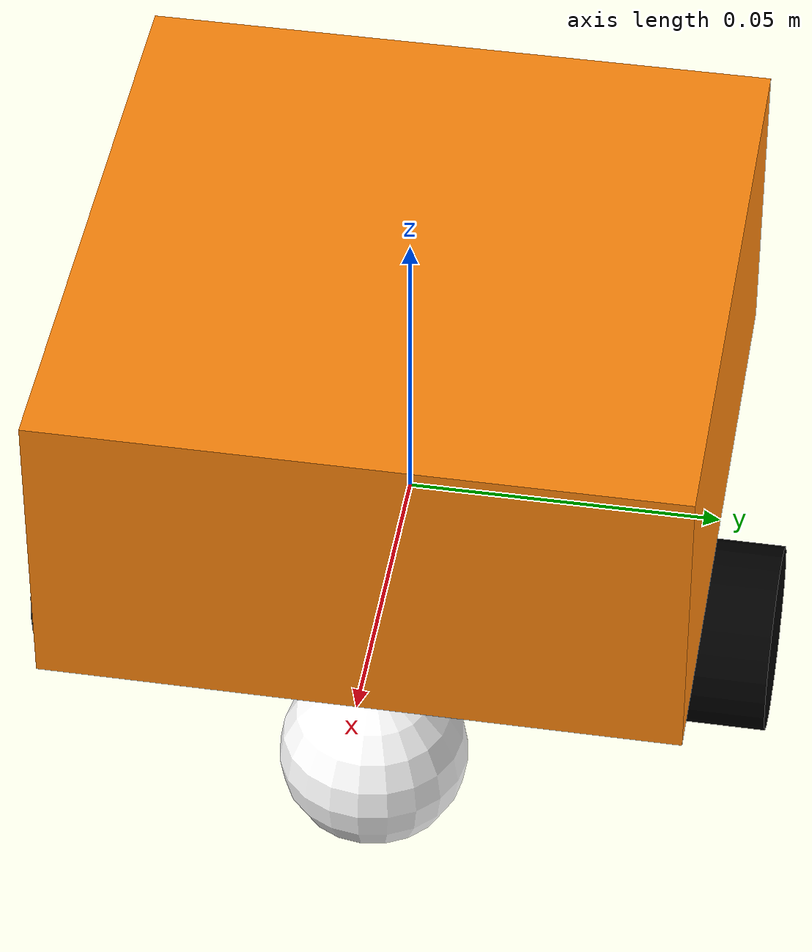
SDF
<?xml version="1.0" ?>
<sdf version='1.11'>
  <model name='diffdrive_robot'>
    <link name='base_link'>
      <inertial>
        <pose>0 0 -0.01 0 0 0</pose>
        <mass>0.5</mass>
        <inertia>
          <ixx>0.00040549999999999999</ixx>
          <ixy>0</ixy>
          <ixz>0</ixz>
          <iyy>0.00065050000000000014</iyy>
          <iyz>0</iyz>
          <izz>0.00076300000000000001</izz>
        </inertia>
      </inertial>
      <collision name='base_link_collision'>
        <pose>0 0 0 0 0 0</pose>
        <geometry>
          <box>
            <size>0.10000000000000001 0.10000000000000001 0.050000000000000003</size>
          </box>
        </geometry>
      </collision>
      <collision name='base_link_fixed_joint_lump__caster_frontal_wheel_collision_1'>
        <pose>0.035000000000000003 0 -0.025000000000000001 0 0 0</pose>
        <geometry>
          <sphere>
            <radius>0.014999999999999999</radius>
          </sphere>
        </geometry>
      </collision>
      <collision name='base_link_fixed_joint_lump__caster_rear_wheel_collision_2'>
        <pose>-0.035000000000000003 0 -0.025000000000000001 0 0 0</pose>
        <geometry>
          <sphere>
            <radius>0.014999999999999999</radius>
          </sphere>
        </geometry>
      </collision>
      <visual name='base_link_visual'>
        <pose>0 0 0.025000000000000001 0 0 0</pose>
        <geometry>
          <box>
            <size>0.10000000000000001 0.10000000000000001 0.050000000000000003</size>
          </box>
        </geometry>
        <material>
          <diffuse>1 0.529411793 0.0490196086 1</diffuse>
          <ambient>1 0.529411793 0.0490196086 1</ambient>
        </material>
      </visual>
      <visual name='base_link_fixed_joint_lump__caster_frontal_wheel_visual_1'>
        <pose>0.035000000000000003 0 -0.025000000000000001 0 0 0</pose>
        <geometry>
          <sphere>
            <radius>0.014999999999999999</radius>
          </sphere>
        </geometry>
        <material>
          <diffuse>1 1 1 1</diffuse>
          <ambient>1 1 1 1</ambient>
        </material>
      </visual>
      <visual name='base_link_fixed_joint_lump__caster_rear_wheel_visual_2'>
        <pose>-0.035000000000000003 0 -0.025000000000000001 0 0 0</pose>
        <geometry>
          <sphere>
            <radius>0.014999999999999999</radius>
          </sphere>
        </geometry>
        <material>
          <diffuse>1 1 1 1</diffuse>
          <ambient>1 1 1 1</ambient>
        </material>
      </visual>
    </link>
    <joint name='left_wheel_joint' type='revolute'>
      <pose relative_to='base_link'>0 -0.050000000000000003 -0.025000000000000001 0 0 0</pose>
      <parent>base_link</parent>
      <child>left_wheel</child>
      <axis>
        <xyz>0 1 0</xyz>
        <limit>
          <effort>100</effort>
          <velocity>1</velocity>
          <lower>-inf</lower>
          <upper>inf</upper>
        </limit>
        <dynamics>
          <damping>0.20000000000000001</damping>
          <friction>0</friction>
          <spring_reference>0</spring_reference>
          <spring_stiffness>0</spring_stiffness>
        </dynamics>
      </axis>
    </joint>
    <link name='left_wheel'>
      <pose relative_to='left_wheel_joint'>0 0 0 0 0 0</pose>
      <inertial>
        <pose>0 0 0 1.5707963267948959 0 0</pose>
        <mass>0.29999999999999999</mass>
        <inertia>
          <ixx>2.6874999999999999e-05</ixx>
          <ixy>0</ixy>
          <ixz>0</ixz>
          <iyy>2.6874999999999999e-05</iyy>
          <iyz>0</iyz>
          <izz>3.3749999999999987e-05</izz>
        </inertia>
      </inertial>
      <collision name='left_wheel_collision'>
        <pose>0 0 0 1.5707963267948959 0 0</pose>
        <geometry>
          <cylinder>
            <length>0.02</length>
            <radius>0.014999999999999999</radius>
          </cylinder>
        </geometry>
      </collision>
      <visual name='left_wheel_visual'>
        <pose>0 0 0 1.5707963267948959 0 0</pose>
        <geometry>
          <cylinder>
            <length>0.02</length>
            <radius>0.014999999999999999</radius>
          </cylinder>
        </geometry>
        <material>
          <diffuse>0 0 0 1</diffuse>
          <ambient>0 0 0 1</ambient>
        </material>
      </visual>
    </link>
    <joint name='right_wheel_joint' type='revolute'>
      <pose relative_to='base_link'>0 0.050000000000000003 -0.025000000000000001 0 0 0</pose>
      <parent>base_link</parent>
      <child>right_wheel</child>
      <axis>
        <xyz>0 1 0</xyz>
        <limit>
          <effort>100</effort>
          <velocity>1</velocity>
          <lower>-inf</lower>
          <upper>inf</upper>
        </limit>
        <dynamics>
          <damping>0.20000000000000001</damping>
          <friction>0</friction>
          <spring_reference>0</spring_reference>
          <spring_stiffness>0</spring_stiffness>
        </dynamics>
      </axis>
    </joint>
    <link name='right_wheel'>
      <pose relative_to='right_wheel_joint'>0 0 0 0 0 0</pose>
      <inertial>
        <pose>0 0 0 1.5707963267948959 0 0</pose>
        <mass>0.29999999999999999</mass>
        <inertia>
          <ixx>2.6874999999999999e-05</ixx>
          <ixy>0</ixy>
          <ixz>0</ixz>
          <iyy>2.6874999999999999e-05</iyy>
          <iyz>0</iyz>
          <izz>3.3749999999999987e-05</izz>
        </inertia>
      </inertial>
      <collision name='right_wheel_collision'>
        <pose>0 0 0 1.5707963267948959 0 0</pose>
        <geometry>
          <cylinder>
            <length>0.02</length>
            <radius>0.014999999999999999</radius>
          </cylinder>
        </geometry>
      </collision>
      <visual name='right_wheel_visual'>
        <pose>0 0 0 1.5707963267948959 0 0</pose>
        <geometry>
          <cylinder>
            <length>0.02</length>
            <radius>0.014999999999999999</radius>
          </cylinder>
        </geometry>
        <material>
          <diffuse>0 0 0 1</diffuse>
          <ambient>0 0 0 1</ambient>
        </material>
      </visual>
    </link>
    <frame name='caster_frontal_wheel_joint' attached_to='base_link'>
      <pose>0.035000000000000003 0 -0.025000000000000001 0 0 0</pose>
    </frame>
    <frame name='caster_frontal_wheel' attached_to='caster_frontal_wheel_joint'>
      <pose>0 0 0 0 0 0</pose>
    </frame>
    <frame name='caster_rear_wheel_joint' attached_to='base_link'>
      <pose>-0.035000000000000003 0 -0.025000000000000001 0 0 0</pose>
    </frame>
    <frame name='caster_rear_wheel' attached_to='caster_rear_wheel_joint'>
      <pose>0 0 0 0 0 0</pose>
    </frame>
  </model>
</sdf>
